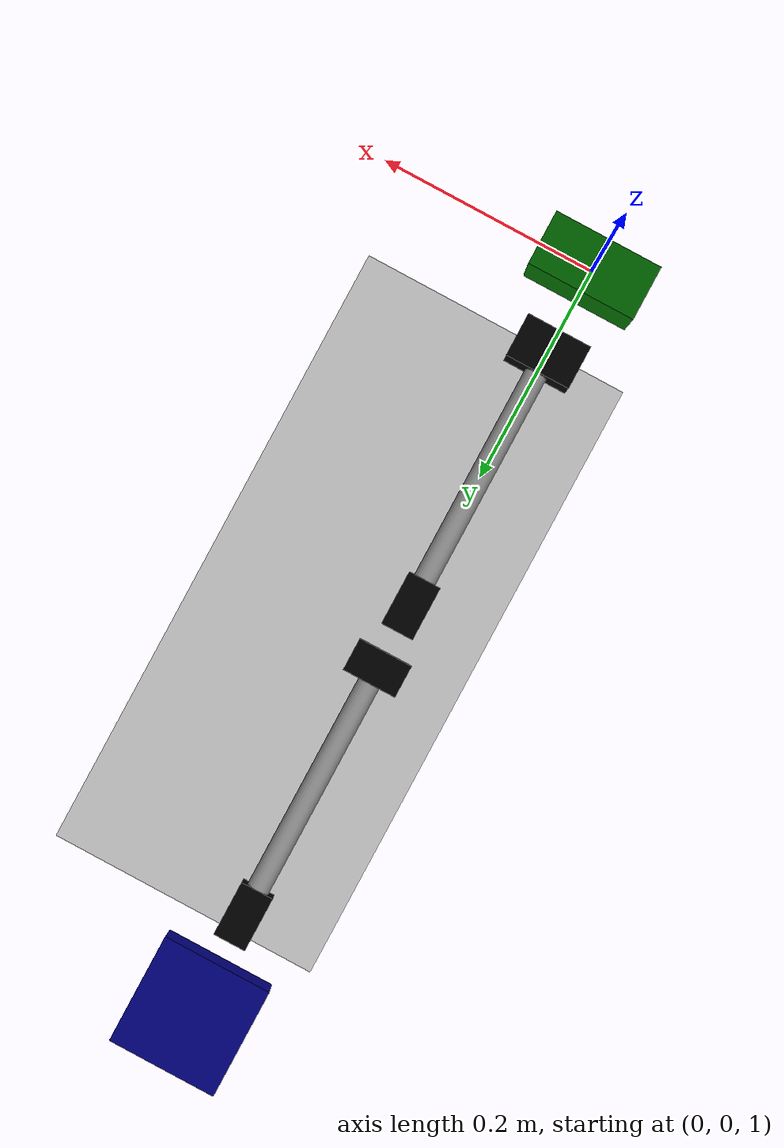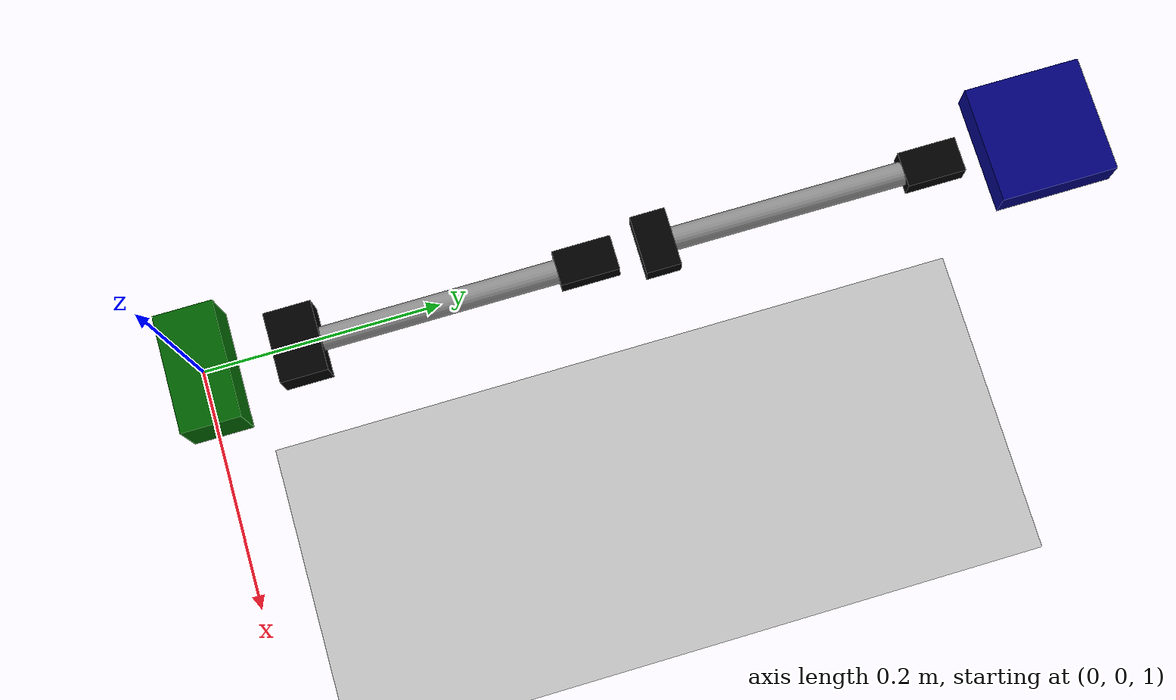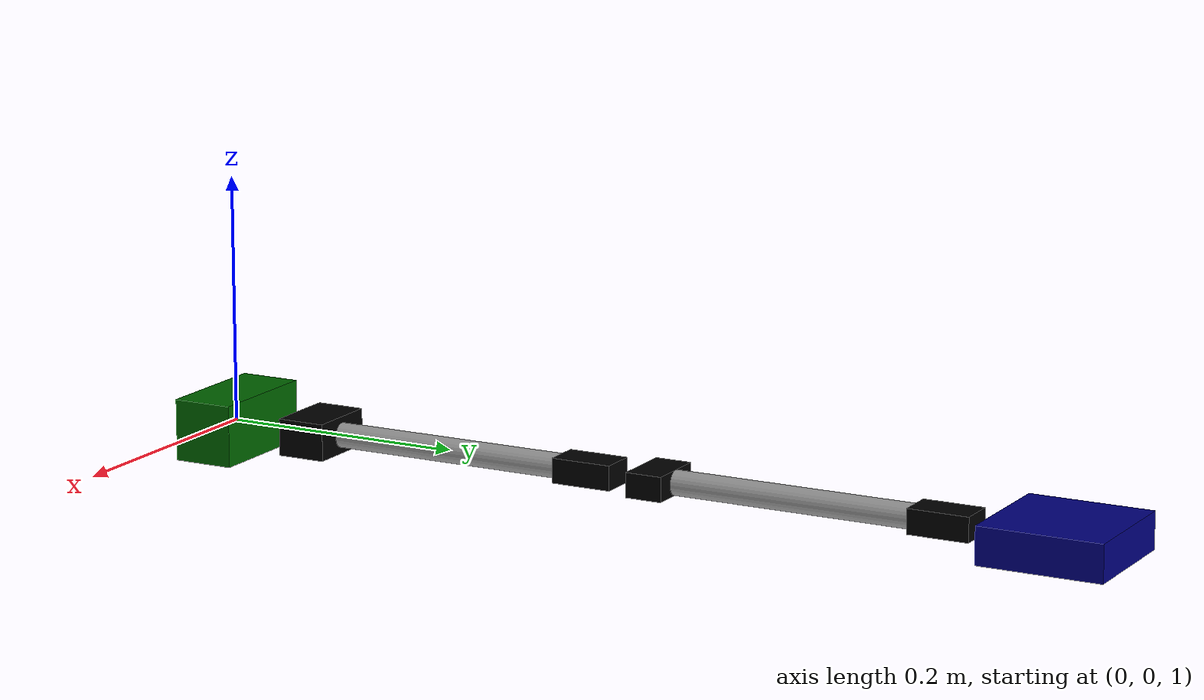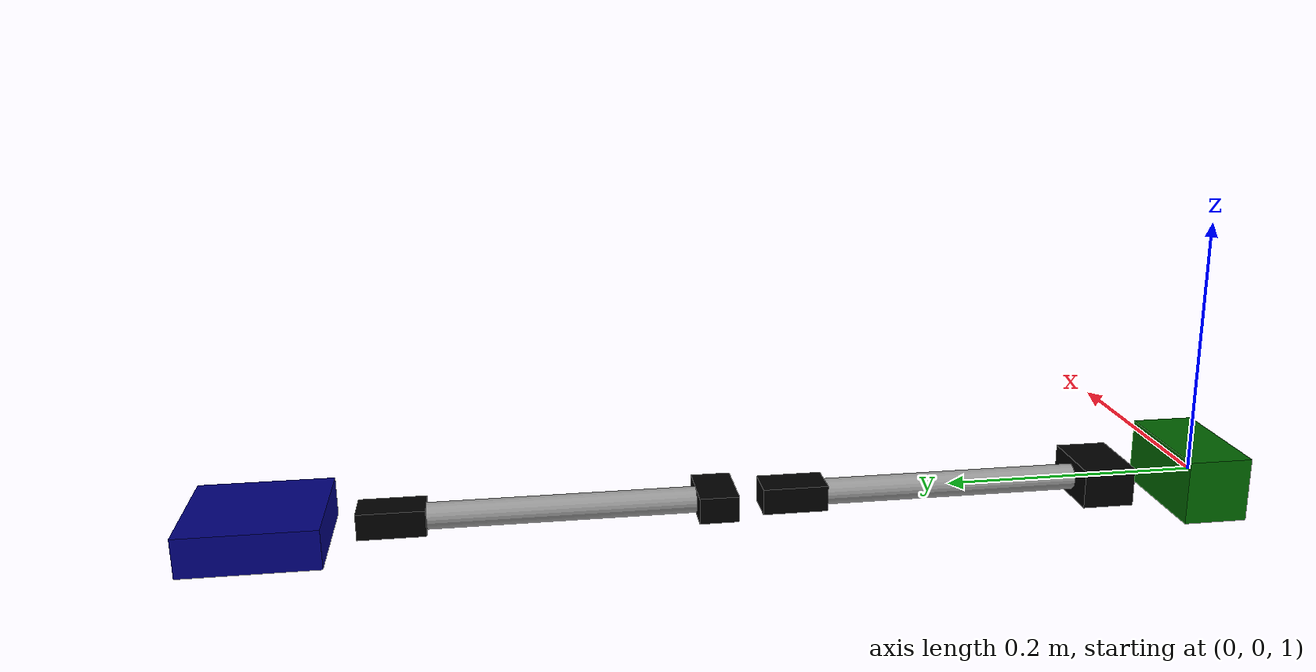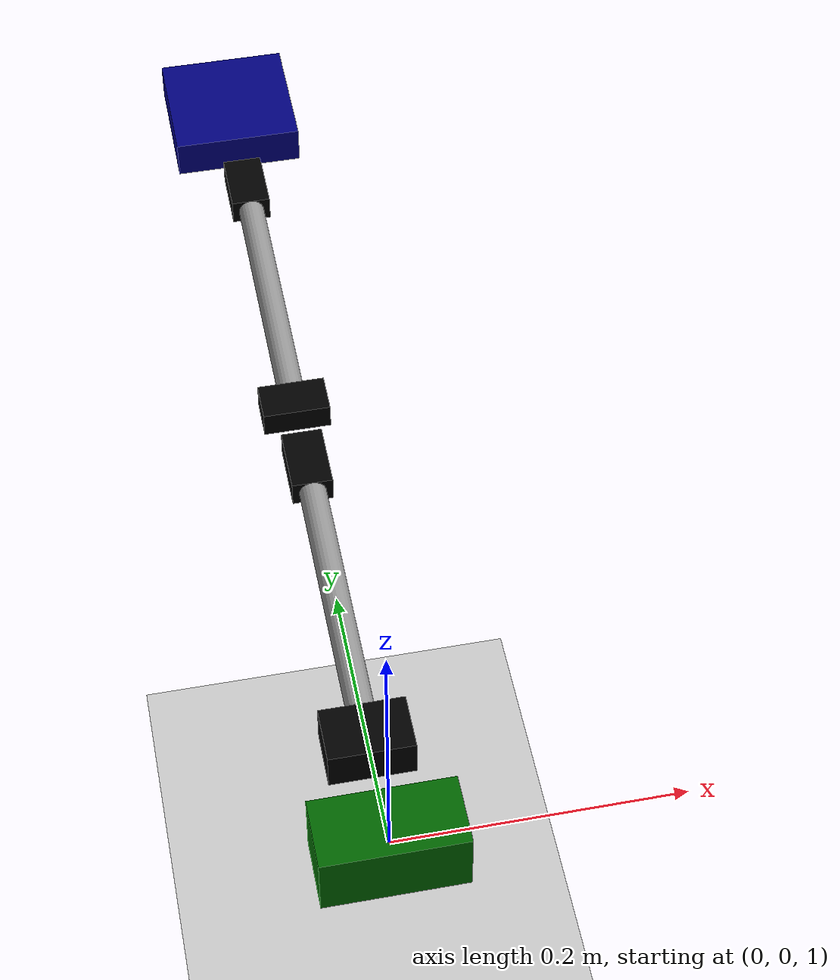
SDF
<sdf version="1.4">
	<world name="default">
		<include>
			<uri>model://sun</uri>
		</include>
		<include>
			<uri>model://ground_plane</uri>
		</include>
		<include>
			<uri>model://robotic_arm</uri>

			<plugin name="trajectory_controll" filename="libtrajectory_velocity_controll_plugin.so"/>
			<plugin name="gazebo_ros_control" filename="libgazebo_ros_control.so">
				<robotNamespace>/robotic_arm</robotNamespace>
			</plugin>
		</include>
	</world>
</sdf>

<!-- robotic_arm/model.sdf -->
<sdf version='1.6'>
	<model name="robotic_arm">

		<static>false</static>
		<!-- Ombro -->
		<link name="ombro_link">
			<gravity> 0 </gravity>
			<pose> 0 0 1 0 0 0 </pose>
			<frame name="ombro_frame"/>

			<visual name="ombro_visual">
				<geometry>
					<box>
						<size> 0.1 0.05 0.05 </size>
					</box>
				</geometry>
				<material>
					<ambient>0 0.4 0 1</ambient>
					<diffuse>0 0.4 0 1</diffuse>
					<specular>0 0 0 1</specular>
					<emissive>0 0 0 0</emissive>
				</material>
			</visual>
			<collision name="ombro_collision">
				<geometry>
					<box>
						<size> 0.1 0.05 0.05 </size>
					</box>
				</geometry>
			</collision>
			<inertial>
				<mass> 0.3 </mass>
				<inertia>

					<ixx> 0.000125 </ixx>
					<iyy> 0.00031250000000000006 </iyy>
					<izz> 0.00031250000000000006 </izz>
					<ixy>0.0</ixy>
					<ixz>0.0</ixz>
					<iyz>0.0</iyz>
				</inertia>
			</inertial>
		</link>

		<!-- Box0 -->
		<link name="Box0_link">
			<gravity> 0 </gravity>

			<pose> 0 0.08 1 0 0 0 </pose>
			<visual name="Box0_visual">
				<geometry>
					<box>
						<size> 0.06 0.04 0.03 </size>
					</box>
				</geometry>
				<material>
					<ambient>0 0 0 1</ambient>
					<diffuse>0 0 0 1</diffuse>
					<specular>0 0 0 1</specular>
					<emissive>0 0 0 0</emissive>
				</material>
			</visual>
			<collision name="Box0_collision">
				<geometry>
					<box>
						<size> 0.06 0.04 0.03 </size>
					</box>
				</geometry>
			</collision>
			<inertial>
				<mass> 0.3 </mass>
				<inertia>

					<ixx> 6.25e-05 </ixx>
					<iyy> 0.00011249999999999998 </iyy>
					<izz> 0.00013 </izz>
					<ixy> 0.0 </ixy>
					<ixz> 0.0 </ixz>
					<iyz> 0.0 </iyz>
				</inertia>
			</inertial>
		</link>

		<!-- UMERO -->
		<link name="Tube0_link">
			<gravity> 0 </gravity>

			<pose> 0 0.1 1 0 0 0 </pose>
			<visual name="Tube0_visual">
				<pose> 0 0.1 0 1.57075 0 0 </pose>
				<geometry>
					<cylinder>
						<length> 0.2 </length>
						<radius> 0.01 </radius>
					</cylinder>
				</geometry>
				<material>
					<ambient>0.6 0.6 0.6 1</ambient>
					<diffuse>0.6 0.6 0.6 1</diffuse>
					<specular>0 0 0 1</specular>
					<emissive>0 0 0 0</emissive>
				</material>
			</visual>
			<collision name="Tube0_collision">
				<pose> 0 0.1 0 1.57075 0 0 </pose>
				<geometry>
					<cylinder>
						<length> 0.2 </length>
						<radius> 0.01 </radius>
					</cylinder>
				</geometry>
			</collision>
			<inertial>
				<pose> 0 0.1 0 1.57075 0 0 </pose>
				<mass> 0.1 </mass>
				<inertia>

					<ixx> 0.00033583333333333344 </ixx>
					<iyy> 0.00033583333333333344 </iyy>
					<izz> 5.0e-06 </izz>
					<ixy> 0.0 </ixy>
					<ixz> 0.0 </ixz>
					<iyz> 0.0 </iyz>
				</inertia>
			</inertial>
		</link>

		<!-- Box1 -->
		<link name="Box1_link">
			<gravity> 0 </gravity>

			<pose> 0 0.32500000000000007 1 0 0 0 </pose>
			<visual name="Box1_visual">
				<geometry>
					<box>
						<size> 0.03 0.05 0.02 </size>
					</box>
				</geometry>
				<material>
					<ambient>0 0 0 1</ambient>
					<diffuse>0 0 0 1</diffuse>
					<specular>0 0 0 1</specular>
					<emissive>0 0 0 0</emissive>
				</material>
			</visual>
			<collision name="Box1_collision">
				<geometry>
					<box>
						<size> 0.03 0.05 0.02 </size>
					</box>
				</geometry>
			</collision>
			<inertial>
				<mass> 0.3 </mass>
				<inertia>

					<ixx> 7.250000000000001e-05 </ixx>
					<iyy> 3.25e-05 </iyy>
					<izz> 8.499999999999999e-05 </izz>
					<ixy> 0.0 </ixy>
					<ixz> 0.0 </ixz>
					<iyz> 0.0 </iyz>
				</inertia>
			</inertial>
		</link>

		<!-- Box2 -->
		<link name="Box2_link">
			<gravity> 0 </gravity>

			<pose> 0 0.38500000000000006 1 0 0 0 </pose>
			<visual name="Box2_visual">
				<geometry>
					<box>
						<size> 0.05 0.03 0.02 </size>
					</box>
				</geometry>
				<material>
					<ambient>0 0 0 1</ambient>
					<diffuse>0 0 0 1</diffuse>
					<specular>0 0 0 1</specular>
					<emissive>0 0 0 0</emissive>
				</material>
			</visual>
			<collision name="Box2_collision">
				<geometry>
					<box>
						<size> 0.05 0.03 0.02 </size>
					</box>
				</geometry>
			</collision>
			<inertial>
				<mass> 0.3 </mass>
				<inertia>

					<ixx> 3.25e-05 </ixx>
					<iyy> 7.250000000000001e-05 </iyy>
					<izz> 8.499999999999999e-05 </izz>
					<ixy> 0.0 </ixy>
					<ixz> 0.0 </ixz>
					<iyz> 0.0 </iyz>
				</inertia>
			</inertial>
		</link>

		<!-- Tube1 -->
		<link name="Tube1_link">
			<gravity> 0 </gravity>

			<pose> 0 0.4 1 0 0 0 </pose>
			<visual name="Tube1_visual">
				<pose> 0 0.1 0 1.57075 0 0 </pose>
				<geometry>
					<cylinder>
						<length> 0.2 </length>
						<radius> 0.01 </radius>
					</cylinder>
				</geometry>
				<material>
					<ambient>0.6 0.6 0.6 1</ambient>
					<diffuse>0.6 0.6 0.6 1</diffuse>
					<specular>0 0 0 1</specular>
					<emissive>0 0 0 0</emissive>
				</material>
			</visual>
			<collision name="Tube1_collision">
				<pose> 0 0.1 0 1.57075 0 0 </pose>
				<geometry>
					<cylinder>
						<length> 0.2 </length>
						<radius> 0.01 </radius>
					</cylinder>
				</geometry>
			</collision>
			<inertial>
				<pose> 0 0.1 0 1.57075 0 0 </pose>
				<mass> 0.1 </mass>
				<inertia>

					<ixx> 0.00033583333333333344 </ixx>
					<iyy> 0.00033583333333333344 </iyy>
					<izz> 5.0e-06 </izz>
					<ixy> 0.0 </ixy>
					<ixz> 0.0 </ixz>
					<iyz> 0.0 </iyz>
				</inertia>
			</inertial>
		</link>

		<!-- Box3 -->
		<link name="Box3_link">
			<gravity> 0 </gravity>

			<pose> 0 0.6250000000000001 1 0 0 0 </pose>
			<visual name="Box3_visual">
				<geometry>
					<box>
						<size> 0.03 0.05 0.02 </size>
					</box>
				</geometry>
				<material>
					<ambient>0 0 0 1</ambient>
					<diffuse>0 0 0 1</diffuse>
					<specular>0 0 0 1</specular>
					<emissive>0 0 0 0</emissive>
				</material>
			</visual>
			<collision name="Box3_collision">
				<geometry>
					<box>
						<size> 0.03 0.05 0.02 </size>
					</box>
				</geometry>
			</collision>
			<inertial>
				<mass> 0.3 </mass>
				<inertia>

					<ixx> 7.250000000000001e-05 </ixx>
					<iyy> 3.25e-05 </iyy>
					<izz> 8.499999999999999e-05 </izz>
					<ixy> 0.0 </ixy>
					<ixz> 0.0 </ixz>
					<iyz> 0.0 </iyz>
				</inertia>
			</inertial>
		</link>

		<!-- Gripper -->
		<link name="Gripper_link">
			<gravity> 0 </gravity>

			<pose> 0 0.7200000000000002 1 0 0 0 </pose>
			<visual name="Gripper_visual">
				<geometry>
					<box>
						<size> 0.1 0.1 0.03 </size>
					</box>
				</geometry>
				<material>
					<ambient>0 0 0.5 1</ambient>
					<diffuse>0 0 0.5 1</diffuse>
					<specular>0 0 0 1</specular>
					<emissive>0 0 0 0</emissive>
				</material>
			</visual>
			<collision name="Gripper_collision">
				<geometry>
					<box>
						<size> 0.1 0.1 0.03 </size>
					</box>
				</geometry>
			</collision>
			<inertial>
				<mass> 0.25 </mass>
				<inertia>

					<ixx> 0.00022708333333333337 </ixx>
					<iyy> 0.00022708333333333337 </iyy>
					<izz> 0.00041666666666666675 </izz>
					<ixy> 0.0 </ixy>
					<ixz> 0.0 </ixz>
					<iyz> 0.0 </iyz>
				</inertia>
			</inertial>
		</link>

		<!-- Joints -->
		<joint name="joint0" type="fixed">
			<gravity>  </gravity>
			<parent>world</parent>
			<child>ombro_link</child>
			<pose> 0 0 1 0 0 0 </pose>
		</joint>

		<joint name="joint1" type="revolute">
			<parent>ombro_link</parent>
			<child>Box0_link</child>
			<pose> 0 -0.08 0 0 0 0 </pose>
			<axis>
				<xyz>1 0 0</xyz>
				<limit>
					<lower>-1.57075</lower>
					<upper>1.57075</upper>
					<effort>10000</effort>
					<velocity>0.01</velocity>
				</limit>
			</axis>
		</joint>

		<joint name="joint2" type="revolute">
			<gravity>  </gravity>
			<parent>Box0_link</parent>
			<child>Tube0_link</child>
			<pose> 0 0 0 0 0 0 </pose>
			<axis>
				<xyz>0 1 0</xyz>
				<limit>
					<lower>-3.1416</lower>
					<upper>3.1416</upper>
					<effort>100</effort>
					<velocity>0.01</velocity>
				</limit>
			</axis>
		</joint>

		<joint name="joint3" type="fixed">
			<parent>Tube0_link</parent>
			<child>Box1_link</child>
			<pose> 0 0 0 0 0 0 </pose>
		</joint>

		<joint name="joint4" type="revolute">
			<parent>Box1_link</parent>
			<child>Box2_link</child>
			<pose> 0 -0.035 0 0 0 0 </pose>
			<axis>
				<xyz>1 0 0</xyz>
				<limit>
					<lower>-3</lower>
					<upper>3</upper>
					<effort>100</effort>
					<velocity>0.01</velocity>
				</limit>
			</axis>
		</joint>

		<joint name="joint5" type="revolute">
			<parent>Box2_link</parent>
			<child>Tube1_link</child>
			<pose> 0 0 0 0 0 0 </pose>
			<axis>
				<xyz>0 1 0</xyz>
				<limit>
					<lower>-3.1416</lower>
					<upper>3.1416</upper>
					<effort>100</effort>
					<velocity>0.01</velocity>
				</limit>
			</axis>
		</joint>

		<joint name="joint6" type="fixed">
			<parent>Tube1_link</parent>
			<child>Box3_link</child>
			<pose> 0 0 0 0 0 0 </pose>
		</joint>

		<joint name="joint7" type="revolute">
			<parent>Box3_link</parent>
			<child>Gripper_link</child>
			<pose> 0 -0.08 0 0 0 0 </pose>
			<axis>
				<xyz>1 0 0</xyz>
				<limit>
					<lower>-2</lower>
					<upper>2</upper>
					<effort>100</effort>
					<velocity>0.01</velocity>
				</limit>
			</axis>
		</joint>

	</model>
</sdf>
